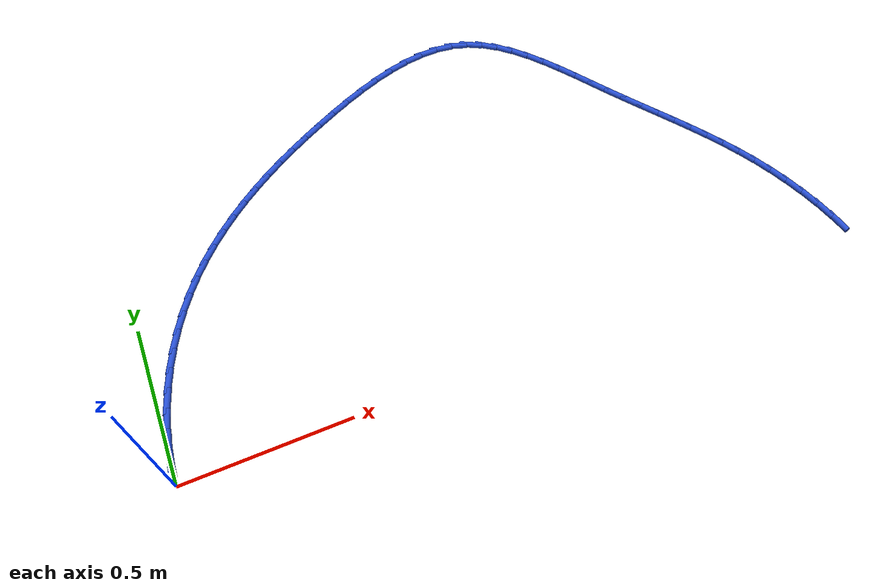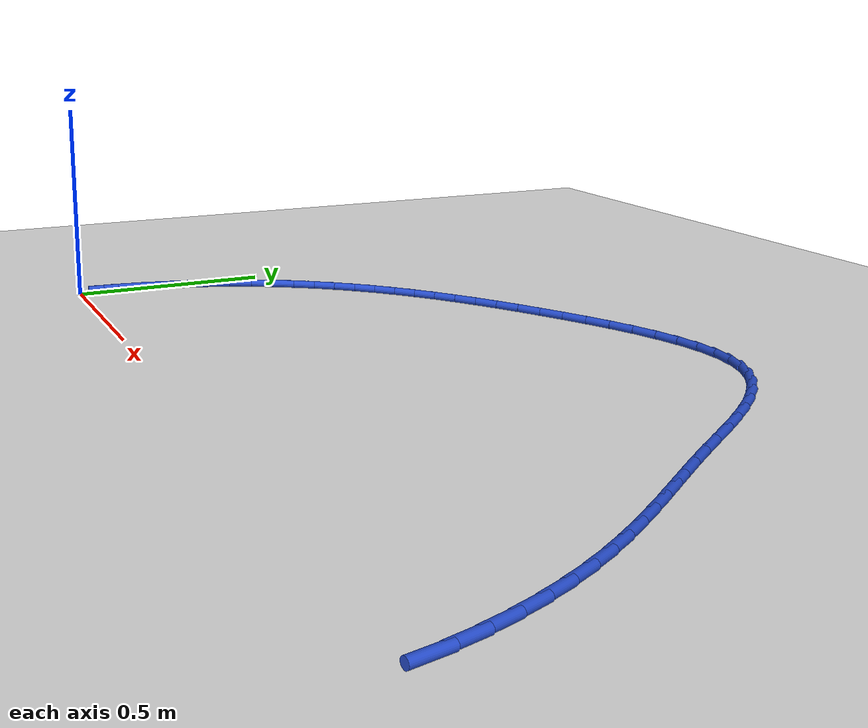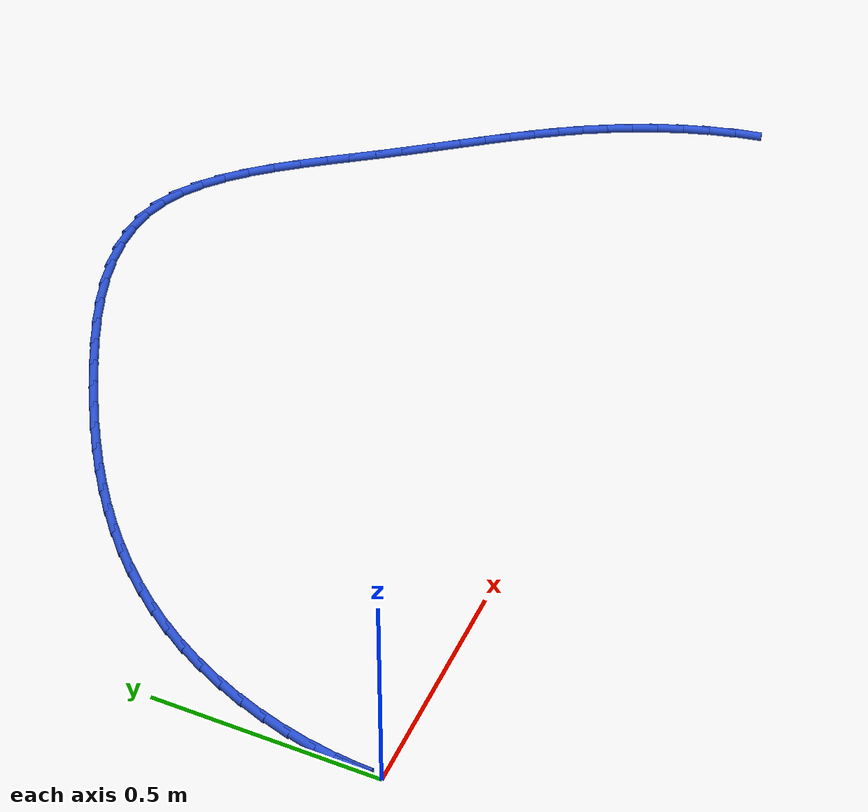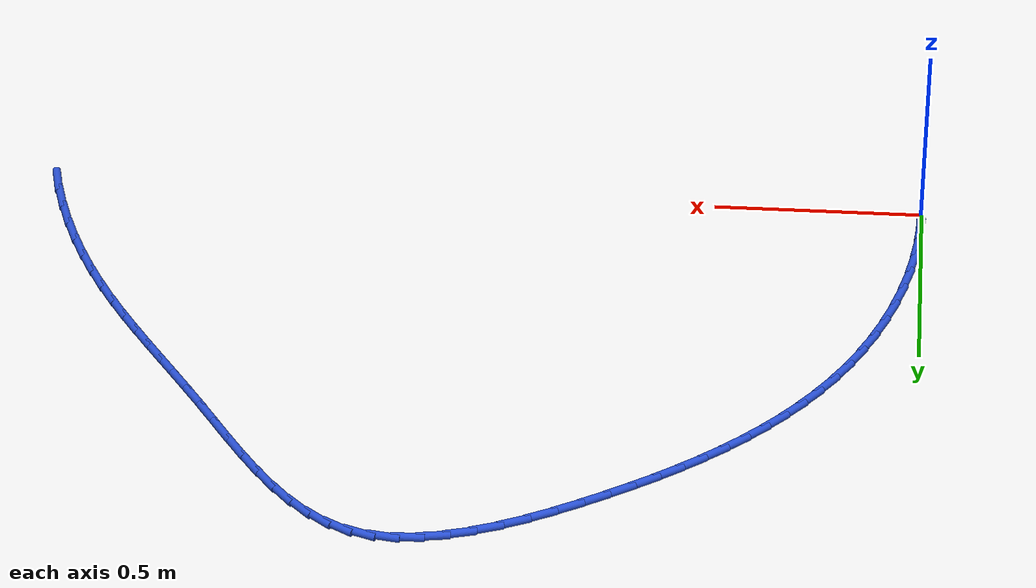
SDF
<sdf version="1.6">
 <world name="default">
  <model name="ground_plane">
   <static>1</static>
   <link name="link">
    <collision name="collision">
     <geometry><plane><normal>0 0 1</normal><size>100 100</size></plane></geometry>
     <surface><friction><ode><mu>100</mu><mu2>50</mu2></ode></friction></surface>
    </collision>
    <visual name="visual">
     <cast_shadows>0</cast_shadows>
     <geometry><plane><normal>0 0 1</normal><size>100 100</size></plane></geometry>
     <material>
      <script><uri>file://media/materials/scripts/gazebo.material</uri><name>Gazebo/WhiteGlow</name></script>
     </material>
    </visual>
   </link>
  </model>
  <model name="line">
   <link name="link_1">
    <pose>0.00249189040633298 0.061609578257293095 0.01 0 1.57 1.4676739201733793</pose>
    <collision name="collision">
     <geometry><cylinder><radius>0.01</radius><length>0.08</length></cylinder></geometry>
    </collision>
    <visual name="visual">
     <material>
      <script><name>Gazebo/Blue</name><uri>file://media/materials/scripts/gazebo.material</uri></script>
     </material>
     <geometry><cylinder><radius>0.01</radius><length>0.08</length></cylinder></geometry>
    </visual>
   </link>
   <link name="link_2">
    <pose>0.00884356909202964 0.12298467453925 0.01 0 1.57 1.406998467835577</pose>
    <collision name="collision">
     <geometry><cylinder><radius>0.01</radius><length>0.08</length></cylinder></geometry>
    </collision>
    <visual name="visual">
     <material>
      <script><name>Gazebo/Blue</name><uri>file://media/materials/scripts/gazebo.material</uri></script>
     </material>
     <geometry><cylinder><radius>0.01</radius><length>0.08</length></cylinder></geometry>
    </visual>
   </link>
   <link name="link_3">
    <pose>0.018906182309126298 0.18386739593590545 0.01 0 1.57 1.34798038354095</pose>
    <collision name="collision">
     <geometry><cylinder><radius>0.01</radius><length>0.08</length></cylinder></geometry>
    </collision>
    <visual name="visual">
     <material>
      <script><name>Gazebo/Blue</name><uri>file://media/materials/scripts/gazebo.material</uri></script>
     </material>
     <geometry><cylinder><radius>0.01</radius><length>0.08</length></cylinder></geometry>
    </visual>
   </link>
   <link name="link_4">
    <pose>0.03253087630965926 0.24399984953729387 0.01 0 1.57 1.2902266174769443</pose>
    <collision name="collision">
     <geometry><cylinder><radius>0.01</radius><length>0.08</length></cylinder></geometry>
    </collision>
    <visual name="visual">
     <material>
      <script><name>Gazebo/Blue</name><uri>file://media/materials/scripts/gazebo.material</uri></script>
     </material>
     <geometry><cylinder><radius>0.01</radius><length>0.08</length></cylinder></geometry>
    </visual>
   </link>
   <link name="link_5">
    <pose>0.049568797345664856 0.30312414243345 0.01 0 1.57 1.2333224413048673</pose>
    <collision name="collision">
     <geometry><cylinder><radius>0.01</radius><length>0.08</length></cylinder></geometry>
    </collision>
    <visual name="visual">
     <material>
      <script><name>Gazebo/Blue</name><uri>file://media/materials/scripts/gazebo.material</uri></script>
     </material>
     <geometry><cylinder><radius>0.01</radius><length>0.08</length></cylinder></geometry>
    </visual>
   </link>
   <link name="link_6">
    <pose>0.06987109166917943 0.3609823817144082 0.01 0 1.57 1.1768344805644777</pose>
    <collision name="collision">
     <geometry><cylinder><radius>0.01</radius><length>0.08</length></cylinder></geometry>
    </collision>
    <visual name="visual">
     <material>
      <script><name>Gazebo/Blue</name><uri>file://media/materials/scripts/gazebo.material</uri></script>
     </material>
     <geometry><cylinder><radius>0.01</radius><length>0.08</length></cylinder></geometry>
    </visual>
   </link>
   <link name="link_7">
    <pose>0.09328890553223927 0.4173166744702032 0.01 0 1.57 1.12031130609677</pose>
    <collision name="collision">
     <geometry><cylinder><radius>0.01</radius><length>0.08</length></cylinder></geometry>
    </collision>
    <visual name="visual">
     <material>
      <script><name>Gazebo/Blue</name><uri>file://media/materials/scripts/gazebo.material</uri></script>
     </material>
     <geometry><cylinder><radius>0.01</radius><length>0.08</length></cylinder></geometry>
    </visual>
   </link>
   <link name="link_8">
    <pose>0.11967338518688075 0.4718691277908696 0.01 0 1.57 1.063282352613716</pose>
    <collision name="collision">
     <geometry><cylinder><radius>0.01</radius><length>0.08</length></cylinder></geometry>
    </collision>
    <visual name="visual">
     <material>
      <script><name>Gazebo/Blue</name><uri>file://media/materials/scripts/gazebo.material</uri></script>
     </material>
     <geometry><cylinder><radius>0.01</radius><length>0.08</length></cylinder></geometry>
    </visual>
   </link>
   <link name="link_9">
    <pose>0.1488756768851402 0.5243818487664417 0.01 0 1.57 1.0053901611445</pose>
    <collision name="collision">
     <geometry><cylinder><radius>0.01</radius><length>0.08</length></cylinder></geometry>
    </collision>
    <visual name="visual">
     <material>
      <script><name>Gazebo/Blue</name><uri>file://media/materials/scripts/gazebo.material</uri></script>
     </material>
     <geometry><cylinder><radius>0.01</radius><length>0.08</length></cylinder></geometry>
    </visual>
   </link>
   <link name="link_10">
    <pose>0.18075069485831974 0.5746177797074821 0.01 0 1.57 0.9478876875664699</pose>
    <collision name="collision">
     <geometry><cylinder><radius>0.01</radius><length>0.08</length></cylinder></geometry>
    </collision>
    <visual name="visual">
     <material>
      <script><name>Gazebo/Blue</name><uri>file://media/materials/scripts/gazebo.material</uri></script>
     </material>
     <geometry><cylinder><radius>0.01</radius><length>0.08</length></cylinder></geometry>
    </visual>
   </link>
   <link name="link_11">
    <pose>0.2151948905982673 0.6225695451819482 0.01 0 1.57 0.8921609516606636</pose>
    <collision name="collision">
     <geometry><cylinder><radius>0.01</radius><length>0.08</length></cylinder></geometry>
    </collision>
    <visual name="visual">
     <material>
      <script><name>Gazebo/Blue</name><uri>file://media/materials/scripts/gazebo.material</uri></script>
     </material>
     <geometry><cylinder><radius>0.01</radius><length>0.08</length></cylinder></geometry>
    </visual>
   </link>
   <link name="link_12">
    <pose>0.25213047588780085 0.6683722125116863 0.01 0 1.57 0.8387654812205029</pose>
    <collision name="collision">
     <geometry><cylinder><radius>0.01</radius><length>0.08</length></cylinder></geometry>
    </collision>
    <visual name="visual">
     <material>
      <script><name>Gazebo/Blue</name><uri>file://media/materials/scripts/gazebo.material</uri></script>
     </material>
     <geometry><cylinder><radius>0.01</radius><length>0.08</length></cylinder></geometry>
    </visual>
   </link>
   <link name="link_13">
    <pose>0.29148004753528256 0.7121629780355974 0.01 0 1.57 0.7881481463255597</pose>
    <collision name="collision">
     <geometry><cylinder><radius>0.01</radius><length>0.08</length></cylinder></geometry>
    </collision>
    <visual name="visual">
     <material>
      <script><name>Gazebo/Blue</name><uri>file://media/materials/scripts/gazebo.material</uri></script>
     </material>
     <geometry><cylinder><radius>0.01</radius><length>0.08</length></cylinder></geometry>
    </visual>
   </link>
   <link name="link_14">
    <pose>0.33316620234907385 0.7540790380925815 0.01 0 1.57 0.740651425279088</pose>
    <collision name="collision">
     <geometry><cylinder><radius>0.01</radius><length>0.08</length></cylinder></geometry>
    </collision>
    <visual name="visual">
     <material>
      <script><name>Gazebo/Blue</name><uri>file://media/materials/scripts/gazebo.material</uri></script>
     </material>
     <geometry><cylinder><radius>0.01</radius><length>0.08</length></cylinder></geometry>
    </visual>
   </link>
   <link name="link_15">
    <pose>0.37711153713753726 0.7942575890215406 0.01 0 1.57 0.6965137755081744</pose>
    <collision name="collision">
     <geometry><cylinder><radius>0.01</radius><length>0.08</length></cylinder></geometry>
    </collision>
    <visual name="visual">
     <material>
      <script><name>Gazebo/Blue</name><uri>file://media/materials/scripts/gazebo.material</uri></script>
     </material>
     <geometry><cylinder><radius>0.01</radius><length>0.08</length></cylinder></geometry>
    </visual>
   </link>
   <link name="link_16">
    <pose>0.42323864870903444 0.8328358271613747 0.01 0 1.57 0.655877691480167</pose>
    <collision name="collision">
     <geometry><cylinder><radius>0.01</radius><length>0.08</length></cylinder></geometry>
    </collision>
    <visual name="visual">
     <material>
      <script><name>Gazebo/Blue</name><uri>file://media/materials/scripts/gazebo.material</uri></script>
     </material>
     <geometry><cylinder><radius>0.01</radius><length>0.08</length></cylinder></geometry>
    </visual>
   </link>
   <link name="link_17">
    <pose>0.4714701338719274 0.869950948850985 0.01 0 1.57 0.6188027432394687</pose>
    <collision name="collision">
     <geometry><cylinder><radius>0.01</radius><length>0.08</length></cylinder></geometry>
    </collision>
    <visual name="visual">
     <material>
      <script><name>Gazebo/Blue</name><uri>file://media/materials/scripts/gazebo.material</uri></script>
     </material>
     <geometry><cylinder><radius>0.01</radius><length>0.08</length></cylinder></geometry>
    </visual>
   </link>
   <link name="link_18">
    <pose>0.5217285894345781 0.9057401504292724 0.01 0 1.57 0.5852809804265301</pose>
    <collision name="collision">
     <geometry><cylinder><radius>0.01</radius><length>0.08</length></cylinder></geometry>
    </collision>
    <visual name="visual">
     <material>
      <script><name>Gazebo/Blue</name><uri>file://media/materials/scripts/gazebo.material</uri></script>
     </material>
     <geometry><cylinder><radius>0.01</radius><length>0.08</length></cylinder></geometry>
    </visual>
   </link>
   <link name="link_19">
    <pose>0.5739366122053486 0.9403406282351373 0.01 0 1.57 0.5552525973457664</pose>
    <collision name="collision">
     <geometry><cylinder><radius>0.01</radius><length>0.08</length></cylinder></geometry>
    </collision>
    <visual name="visual">
     <material>
      <script><name>Gazebo/Blue</name><uri>file://media/materials/scripts/gazebo.material</uri></script>
     </material>
     <geometry><cylinder><radius>0.01</radius><length>0.08</length></cylinder></geometry>
    </visual>
   </link>
   <link name="link_20">
    <pose>0.6280167989926008 0.9738895786074813 0.01 0 1.57 0.5286204215365274</pose>
    <collision name="collision">
     <geometry><cylinder><radius>0.01</radius><length>0.08</length></cylinder></geometry>
    </collision>
    <visual name="visual">
     <material>
      <script><name>Gazebo/Blue</name><uri>file://media/materials/scripts/gazebo.material</uri></script>
     </material>
     <geometry><cylinder><radius>0.01</radius><length>0.08</length></cylinder></geometry>
    </visual>
   </link>
   <link name="link_21">
    <pose>0.6838917466046963 1.0065241978852044 0.01 0 1.57 0.5052624200224374</pose>
    <collision name="collision">
     <geometry><cylinder><radius>0.01</radius><length>0.08</length></cylinder></geometry>
    </collision>
    <visual name="visual">
     <material>
      <script><name>Gazebo/Blue</name><uri>file://media/materials/scripts/gazebo.material</uri></script>
     </material>
     <geometry><cylinder><radius>0.01</radius><length>0.08</length></cylinder></geometry>
    </visual>
   </link>
   <link name="link_22">
    <pose>0.7414840518499975 1.0383816824072079 0.01 0 1.57 0.48362752422856825</pose>
    <collision name="collision">
     <geometry><cylinder><radius>0.01</radius><length>0.08</length></cylinder></geometry>
    </collision>
    <visual name="visual">
     <material>
      <script><name>Gazebo/Blue</name><uri>file://media/materials/scripts/gazebo.material</uri></script>
     </material>
     <geometry><cylinder><radius>0.01</radius><length>0.08</length></cylinder></geometry>
    </visual>
   </link>
   <link name="link_23">
    <pose>0.8006634953901626 1.0694645193537242 0.01 0 1.57 0.4558360867182312</pose>
    <collision name="collision">
     <geometry><cylinder><radius>0.01</radius><length>0.08</length></cylinder></geometry>
    </collision>
    <visual name="visual">
     <material>
      <script><name>Gazebo/Blue</name><uri>file://media/materials/scripts/gazebo.material</uri></script>
     </material>
     <geometry><cylinder><radius>0.01</radius><length>0.08</length></cylinder></geometry>
    </visual>
   </link>
   <link name="link_24">
    <pose>0.8610172320986839 1.0990543503962225 0.01 0 1.57 0.4184691177879542</pose>
    <collision name="collision">
     <geometry><cylinder><radius>0.01</radius><length>0.08</length></cylinder></geometry>
    </collision>
    <visual name="visual">
     <material>
      <script><name>Gazebo/Blue</name><uri>file://media/materials/scripts/gazebo.material</uri></script>
     </material>
     <geometry><cylinder><radius>0.01</radius><length>0.08</length></cylinder></geometry>
    </visual>
   </link>
   <link name="link_25">
    <pose>0.9220382740694913 1.1261927032368437 0.01 0 1.57 0.3699753890858192</pose>
    <collision name="collision">
     <geometry><cylinder><radius>0.01</radius><length>0.08</length></cylinder></geometry>
    </collision>
    <visual name="visual">
     <material>
      <script><name>Gazebo/Blue</name><uri>file://media/materials/scripts/gazebo.material</uri></script>
     </material>
     <geometry><cylinder><radius>0.01</radius><length>0.08</length></cylinder></geometry>
    </visual>
   </link>
   <link name="link_26">
    <pose>0.9832195690743666 1.1499209415221718 0.01 0 1.57 0.3080984101279676</pose>
    <collision name="collision">
     <geometry><cylinder><radius>0.01</radius><length>0.08</length></cylinder></geometry>
    </collision>
    <visual name="visual">
     <material>
      <script><name>Gazebo/Blue</name><uri>file://media/materials/scripts/gazebo.material</uri></script>
     </material>
     <geometry><cylinder><radius>0.01</radius><length>0.08</length></cylinder></geometry>
    </visual>
   </link>
   <link name="link_27">
    <pose>1.044054064885092 1.169280428898792 0.01 0 1.57 0.22981080506480803</pose>
    <collision name="collision">
     <geometry><cylinder><radius>0.01</radius><length>0.08</length></cylinder></geometry>
    </collision>
    <visual name="visual">
     <material>
      <script><name>Gazebo/Blue</name><uri>file://media/materials/scripts/gazebo.material</uri></script>
     </material>
     <geometry><cylinder><radius>0.01</radius><length>0.08</length></cylinder></geometry>
    </visual>
   </link>
   <link name="link_28">
    <pose>1.10403470927345 1.1833125290132886 0.01 0 1.57 0.13137993276456558</pose>
    <collision name="collision">
     <geometry><cylinder><radius>0.01</radius><length>0.08</length></cylinder></geometry>
    </collision>
    <visual name="visual">
     <material>
      <script><name>Gazebo/Blue</name><uri>file://media/materials/scripts/gazebo.material</uri></script>
     </material>
     <geometry><cylinder><radius>0.01</radius><length>0.08</length></cylinder></geometry>
    </visual>
   </link>
   <link name="link_29">
    <pose>1.1626544500112228 1.1910586055122465 0.01 0 1.57 0.008835025800705273</pose>
    <collision name="collision">
     <geometry><cylinder><radius>0.01</radius><length>0.08</length></cylinder></geometry>
    </collision>
    <visual name="visual">
     <material>
      <script><name>Gazebo/Blue</name><uri>file://media/materials/scripts/gazebo.material</uri></script>
     </material>
     <geometry><cylinder><radius>0.01</radius><length>0.08</length></cylinder></geometry>
    </visual>
   </link>
   <link name="link_30">
    <pose>1.2194062348701924 1.19156002204225 0.01 0 1.57 -0.14070320694372832</pose>
    <collision name="collision">
     <geometry><cylinder><radius>0.01</radius><length>0.08</length></cylinder></geometry>
    </collision>
    <visual name="visual">
     <material>
      <script><name>Gazebo/Blue</name><uri>file://media/materials/scripts/gazebo.material</uri></script>
     </material>
     <geometry><cylinder><radius>0.01</radius><length>0.08</length></cylinder></geometry>
    </visual>
   </link>
   <link name="link_31">
    <pose>1.273783011622141 1.1838581422498835 0.01 0 1.57 -0.31573780649201144</pose>
    <collision name="collision">
     <geometry><cylinder><radius>0.01</radius><length>0.08</length></cylinder></geometry>
    </collision>
    <visual name="visual">
     <material>
      <script><name>Gazebo/Blue</name><uri>file://media/materials/scripts/gazebo.material</uri></script>
     </material>
     <geometry><cylinder><radius>0.01</radius><length>0.08</length></cylinder></geometry>
    </visual>
   </link>
   <link name="link_32">
    <pose>1.3252920518428473 1.1670319011707109 0.01 0 1.57 -0.48943522262989525</pose>
    <collision name="collision">
     <geometry><cylinder><radius>0.01</radius><length>0.08</length></cylinder></geometry>
    </collision>
    <visual name="visual">
     <material>
      <script><name>Gazebo/Blue</name><uri>file://media/materials/scripts/gazebo.material</uri></script>
     </material>
     <geometry><cylinder><radius>0.01</radius><length>0.08</length></cylinder></geometry>
    </visual>
   </link>
   <link name="link_33">
    <pose>1.3738287249247272 1.141178215797742 0.01 0 1.57 -0.6330997383517745</pose>
    <collision name="collision">
     <geometry><cylinder><radius>0.01</radius><length>0.08</length></cylinder></geometry>
    </collision>
    <visual name="visual">
     <material>
      <script><name>Gazebo/Blue</name><uri>file://media/materials/scripts/gazebo.material</uri></script>
     </material>
     <geometry><cylinder><radius>0.01</radius><length>0.08</length></cylinder></geometry>
    </visual>
   </link>
   <link name="link_34">
    <pose>1.4197121812634441 1.1075055822072075 0.01 0 1.57 -0.7455122478792642</pose>
    <collision name="collision">
     <geometry><cylinder><radius>0.01</radius><length>0.08</length></cylinder></geometry>
    </collision>
    <visual name="visual">
     <material>
      <script><name>Gazebo/Blue</name><uri>file://media/materials/scripts/gazebo.material</uri></script>
     </material>
     <geometry><cylinder><radius>0.01</radius><length>0.08</length></cylinder></geometry>
    </visual>
   </link>
   <link name="link_35">
    <pose>1.46328304900929 1.0672788327023426 0.01 0 1.57 -0.8303329247582789</pose>
    <collision name="collision">
     <geometry><cylinder><radius>0.01</radius><length>0.08</length></cylinder></geometry>
    </collision>
    <visual name="visual">
     <material>
      <script><name>Gazebo/Blue</name><uri>file://media/materials/scripts/gazebo.material</uri></script>
     </material>
     <geometry><cylinder><radius>0.01</radius><length>0.08</length></cylinder></geometry>
    </visual>
   </link>
   <link name="link_36">
    <pose>1.5048819563125577 1.021762799586381 0.01 0 1.57 -0.8919434118540746</pose>
    <collision name="collision">
     <geometry><cylinder><radius>0.01</radius><length>0.08</length></cylinder></geometry>
    </collision>
    <visual name="visual">
     <material>
      <script><name>Gazebo/Blue</name><uri>file://media/materials/scripts/gazebo.material</uri></script>
     </material>
     <geometry><cylinder><radius>0.01</radius><length>0.08</length></cylinder></geometry>
    </visual>
   </link>
   <link name="link_37">
    <pose>1.544849531323538 0.9722223151625581 0.01 0 1.57 -0.93403748243697</pose>
    <collision name="collision">
     <geometry><cylinder><radius>0.01</radius><length>0.08</length></cylinder></geometry>
    </collision>
    <visual name="visual">
     <material>
      <script><name>Gazebo/Blue</name><uri>file://media/materials/scripts/gazebo.material</uri></script>
     </material>
     <geometry><cylinder><radius>0.01</radius><length>0.08</length></cylinder></geometry>
    </visual>
   </link>
   <link name="link_38">
    <pose>1.583526402192524 0.9199222117341079 0.01 0 1.57 -0.9591929488295308</pose>
    <collision name="collision">
     <geometry><cylinder><radius>0.01</radius><length>0.08</length></cylinder></geometry>
    </collision>
    <visual name="visual">
     <material>
      <script><name>Gazebo/Blue</name><uri>file://media/materials/scripts/gazebo.material</uri></script>
     </material>
     <geometry><cylinder><radius>0.01</radius><length>0.08</length></cylinder></geometry>
    </visual>
   </link>
   <link name="link_39">
    <pose>1.6212531970698072 0.8661273216042656 0.01 0 1.57 -0.9688199265623955</pose>
    <collision name="collision">
     <geometry><cylinder><radius>0.01</radius><length>0.08</length></cylinder></geometry>
    </collision>
    <visual name="visual">
     <material>
      <script><name>Gazebo/Blue</name><uri>file://media/materials/scripts/gazebo.material</uri></script>
     </material>
     <geometry><cylinder><radius>0.01</radius><length>0.08</length></cylinder></geometry>
    </visual>
   </link>
   <link name="link_40">
    <pose>1.6583705441056802 0.8121024770762657 0.01 0 1.57 -0.9633057502588447</pose>
    <collision name="collision">
     <geometry><cylinder><radius>0.01</radius><length>0.08</length></cylinder></geometry>
    </collision>
    <visual name="visual">
     <material>
      <script><name>Gazebo/Blue</name><uri>file://media/materials/scripts/gazebo.material</uri></script>
     </material>
     <geometry><cylinder><radius>0.01</radius><length>0.08</length></cylinder></geometry>
    </visual>
   </link>
   <link name="link_41">
    <pose>1.6952157656617242 0.7591022703933529 0.01 0 1.57 -0.9501370883108876</pose>
    <collision name="collision">
     <geometry><cylinder><radius>0.01</radius><length>0.08</length></cylinder></geometry>
    </collision>
    <visual name="visual">
     <material>
      <script><name>Gazebo/Blue</name><uri>file://media/materials/scripts/gazebo.material</uri></script>
     </material>
     <geometry><cylinder><radius>0.01</radius><length>0.08</length></cylinder></geometry>
    </visual>
   </link>
   <link name="link_42">
    <pose>1.731924051969306 0.7077551663234074 0.01 0 1.57 -0.9420490456376824</pose>
    <collision name="collision">
     <geometry><cylinder><radius>0.01</radius><length>0.08</length></cylinder></geometry>
    </collision>
    <visual name="visual">
     <material>
      <script><name>Gazebo/Blue</name><uri>file://media/materials/scripts/gazebo.material</uri></script>
     </material>
     <geometry><cylinder><radius>0.01</radius><length>0.08</length></cylinder></geometry>
    </visual>
   </link>
   <link name="link_43">
    <pose>1.7683150925956488 0.6577123301119372 0.01 0 1.57 -0.940612336507204</pose>
    <collision name="collision">
     <geometry><cylinder><radius>0.01</radius><length>0.08</length></cylinder></geometry>
    </collision>
    <visual name="visual">
     <material>
      <script><name>Gazebo/Blue</name><uri>file://media/materials/scripts/gazebo.material</uri></script>
     </material>
     <geometry><cylinder><radius>0.01</radius><length>0.08</length></cylinder></geometry>
    </visual>
   </link>
   <link name="link_44">
    <pose>1.8041811789875377 0.6085400581814625 0.01 0 1.57 -0.9461799111311291</pose>
    <collision name="collision">
     <geometry><cylinder><radius>0.01</radius><length>0.08</length></cylinder></geometry>
    </collision>
    <visual name="visual">
     <material>
      <script><name>Gazebo/Blue</name><uri>file://media/materials/scripts/gazebo.material</uri></script>
     </material>
     <geometry><cylinder><radius>0.01</radius><length>0.08</length></cylinder></geometry>
    </visual>
   </link>
   <link name="link_45">
    <pose>1.8393146025917584 0.5598046469545029 0.01 0 1.57 -0.9589629281214198</pose>
    <collision name="collision">
     <geometry><cylinder><radius>0.01</radius><length>0.08</length></cylinder></geometry>
    </collision>
    <visual name="visual">
     <material>
      <script><name>Gazebo/Blue</name><uri>file://media/materials/scripts/gazebo.material</uri></script>
     </material>
     <geometry><cylinder><radius>0.01</radius><length>0.08</length></cylinder></geometry>
    </visual>
   </link>
   <link name="link_46">
    <pose>1.8735076548550966 0.5110723928535789 0.01 0 1.57 -0.9790044246454571</pose>
    <collision name="collision">
     <geometry><cylinder><radius>0.01</radius><length>0.08</length></cylinder></geometry>
    </collision>
    <visual name="visual">
     <material>
      <script><name>Gazebo/Blue</name><uri>file://media/materials/scripts/gazebo.material</uri></script>
     </material>
     <geometry><cylinder><radius>0.01</radius><length>0.08</length></cylinder></geometry>
    </visual>
   </link>
   <link name="link_47">
    <pose>1.9065526272243385 0.4619095923012103 0.01 0 1.57 -1.0061501077184891</pose>
    <collision name="collision">
     <geometry><cylinder><radius>0.01</radius><length>0.08</length></cylinder></geometry>
    </collision>
    <visual name="visual">
     <material>
      <script><name>Gazebo/Blue</name><uri>file://media/materials/scripts/gazebo.material</uri></script>
     </material>
     <geometry><cylinder><radius>0.01</radius><length>0.08</length></cylinder></geometry>
    </visual>
   </link>
   <link name="link_48">
    <pose>1.938241811146268 0.4118825417199173 0.01 0 1.57 -1.040020786550249</pose>
    <collision name="collision">
     <geometry><cylinder><radius>0.01</radius><length>0.08</length></cylinder></geometry>
    </collision>
    <visual name="visual">
     <material>
      <script><name>Gazebo/Blue</name><uri>file://media/materials/scripts/gazebo.material</uri></script>
     </material>
     <geometry><cylinder><radius>0.01</radius><length>0.08</length></cylinder></geometry>
    </visual>
   </link>
   <link name="link_49">
    <pose>1.9683674980676722 0.3605575375322198 0.01 0 1.57 -1.079994153243459</pose>
    <collision name="collision">
     <geometry><cylinder><radius>0.01</radius><length>0.08</length></cylinder></geometry>
    </collision>
    <visual name="visual">
     <material>
      <script><name>Gazebo/Blue</name><uri>file://media/materials/scripts/gazebo.material</uri></script>
     </material>
     <geometry><cylinder><radius>0.01</radius><length>0.08</length></cylinder></geometry>
    </visual>
   </link>
   <link name="link_50">
    <pose>1.9967219777194332 0.3075008898515355 0.01 0 1.57 -1.1244726672438972</pose>
    <collision name="collision">
     <geometry><cylinder><radius>0.01</radius><length>0.08</length></cylinder></geometry>
    </collision>
    <visual name="visual">
     <material>
      <script><name>Gazebo/Blue</name><uri>file://media/materials/scripts/gazebo.material</uri></script>
     </material>
     <geometry><cylinder><radius>0.01</radius><length>0.08</length></cylinder></geometry>
    </visual>
   </link>
   <link name="link_51">
    <pose>2.0230798855319314 0.2524197694436077 0.01 0 1.57 -1.1705965441169492</pose>
    <collision name="collision">
     <geometry><cylinder><radius>0.01</radius><length>0.08</length></cylinder></geometry>
    </collision>
    <visual name="visual">
     <material>
      <script><name>Gazebo/Blue</name><uri>file://media/materials/scripts/gazebo.material</uri></script>
     </material>
     <geometry><cylinder><radius>0.01</radius><length>0.08</length></cylinder></geometry>
    </visual>
   </link>
   <link name="link_52">
    <pose>2.0471547227263756 0.1955091265011862 0.01 0 1.57 -1.2183842200277863</pose>
    <collision name="collision">
     <geometry><cylinder><radius>0.01</radius><length>0.08</length></cylinder></geometry>
    </collision>
    <visual name="visual">
     <material>
      <script><name>Gazebo/Blue</name><uri>file://media/materials/scripts/gazebo.material</uri></script>
     </material>
     <geometry><cylinder><radius>0.01</radius><length>0.08</length></cylinder></geometry>
    </visual>
   </link>
   <link name="link_53">
    <pose>2.0686467666741075 0.137069422059472 0.01 0 1.57 -1.2684736923877817</pose>
    <collision name="collision">
     <geometry><cylinder><radius>0.01</radius><length>0.08</length></cylinder></geometry>
    </collision>
    <visual name="visual">
     <material>
      <script><name>Gazebo/Blue</name><uri>file://media/materials/scripts/gazebo.material</uri></script>
     </material>
     <geometry><cylinder><radius>0.01</radius><length>0.08</length></cylinder></geometry>
    </visual>
   </link>
   <link name="link_54">
    <pose>2.0872562947464677 0.07740111715366547 0.01 0 1.57 -1.3215017186192766</pose>
    <collision name="collision">
     <geometry><cylinder><radius>0.01</radius><length>0.08</length></cylinder></geometry>
    </collision>
    <visual name="visual">
     <material>
      <script><name>Gazebo/Blue</name><uri>file://media/materials/scripts/gazebo.material</uri></script>
     </material>
     <geometry><cylinder><radius>0.01</radius><length>0.08</length></cylinder></geometry>
    </visual>
   </link>
   <link name="link_55">
    <pose>2.1026835843147955 0.016804672818967435 0.01 0 1.57 -1.3781088142014182</pose>
    <collision name="collision">
     <geometry><cylinder><radius>0.01</radius><length>0.08</length></cylinder></geometry>
    </collision>
    <visual name="visual">
     <material>
      <script><name>Gazebo/Blue</name><uri>file://media/materials/scripts/gazebo.material</uri></script>
     </material>
     <geometry><cylinder><radius>0.01</radius><length>0.08</length></cylinder></geometry>
    </visual>
   </link>
   <link name="link_111">
    <pose>0.0025297072423129847 0.06161209054426414 0.01 0 1.57 1.529760758600143</pose>
    <collision name="collision">
     <geometry><cylinder><radius>0.01</radius><length>0.08</length></cylinder></geometry>
    </collision>
    <visual name="visual">
     <material>
      <script><name>Gazebo/Blue</name><uri>file://media/materials/scripts/gazebo.material</uri></script>
     </material>
     <geometry><cylinder><radius>0.01</radius><length>0.08</length></cylinder></geometry>
    </visual>
   </link>
  </model>
 </world>
</sdf>
